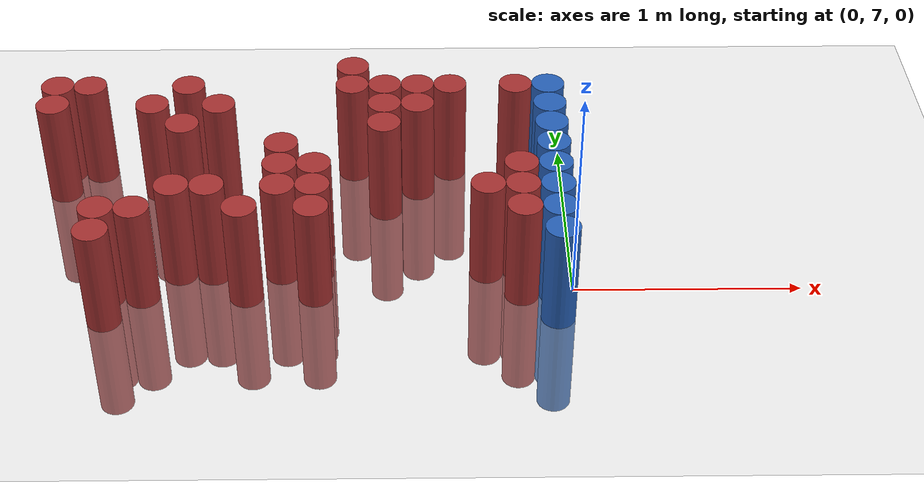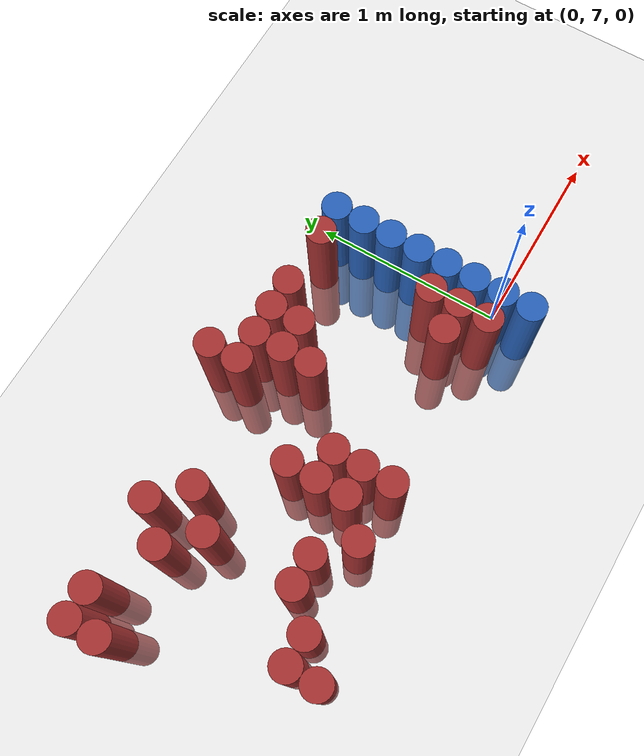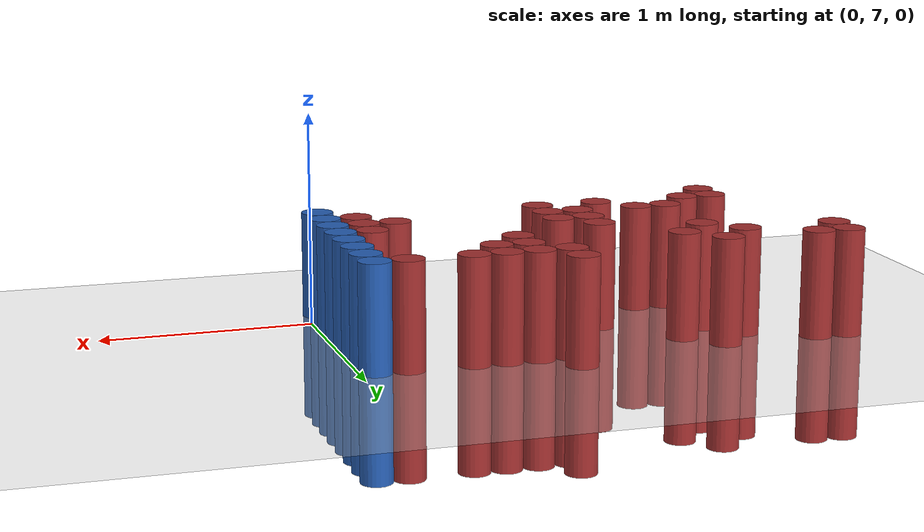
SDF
<sdf version="1.6">
 <world name="default">
  <model name="ground_plane">
   <static>1</static>
   <link name="link">
    <collision name="collision">
     <geometry><plane><normal>0 0 1</normal><size>100 100</size></plane></geometry>
     <surface><friction><ode><mu>100</mu><mu2>50</mu2></ode></friction></surface>
    </collision>
    <visual name="visual">
     <cast_shadows>0</cast_shadows>
     <geometry><plane><normal>0 0 1</normal><size>100 100</size></plane></geometry>
     <material>
      <script><uri>file://media/materials/scripts/gazebo.material</uri><name>Gazebo/Grey</name></script>
     </material>
    </visual>
   </link>
  </model>
  <model name="unit_cylinder_223">
   <static>1</static>
   <pose>-2.325000 7.725000 0.000000 0.000000 0.000000 0.000000</pose>
   <link name="link">
    <inertial>
     <mass>1</mass>
     <inertia><ixx>0.145833</ixx><ixy>0</ixy><ixz>0</ixz><iyy>0.145833</iyy><iyz>0</iyz><izz>0.125</izz></inertia>
    </inertial>
    <collision name="collision">
     <geometry><cylinder><radius>0.075000</radius><length>1</length></cylinder></geometry>
    </collision>
    <visual name="visual">
     <geometry><cylinder><radius>0.075000</radius><length>1</length></cylinder></geometry>
     <material>
      <ambient>0.648000 0.192000 0.192000 1</ambient>
      <diffuse>0.648000 0.192000 0.192000 1</diffuse>
     </material>
     <material>
      <script><name>Gazebo/Grey</name><uri>file://media/materials/scripts/gazebo.material</uri></script>
     </material>
    </visual>
    <sensor name="sensor_contact" type="contact"><contact><collision>collision</collision></contact></sensor>
   </link>
   <plugin filename="gz-sim-touchplugin-system" name="gz::sim::systems::TouchPlugin">
    <target>robot</target>
    <namespace>robot</namespace>
    <time>0.001</time>
    <enabled>true</enabled>
   </plugin>
  </model>
  <model name="unit_cylinder_224">
   <static>1</static>
   <pose>-2.325000 7.875000 0.000000 0.000000 0.000000 0.000000</pose>
   <link name="link">
    <inertial>
     <mass>1</mass>
     <inertia><ixx>0.145833</ixx><ixy>0</ixy><ixz>0</ixz><iyy>0.145833</iyy><iyz>0</iyz><izz>0.125</izz></inertia>
    </inertial>
    <collision name="collision">
     <geometry><cylinder><radius>0.075000</radius><length>1</length></cylinder></geometry>
    </collision>
    <visual name="visual">
     <geometry><cylinder><radius>0.075000</radius><length>1</length></cylinder></geometry>
     <material>
      <ambient>0.648000 0.192000 0.192000 1</ambient>
      <diffuse>0.648000 0.192000 0.192000 1</diffuse>
     </material>
     <material>
      <script><name>Gazebo/Grey</name><uri>file://media/materials/scripts/gazebo.material</uri></script>
     </material>
    </visual>
    <sensor name="sensor_contact" type="contact"><contact><collision>collision</collision></contact></sensor>
   </link>
   <plugin filename="gz-sim-touchplugin-system" name="gz::sim::systems::TouchPlugin">
    <target>robot</target>
    <namespace>robot</namespace>
    <time>0.001</time>
    <enabled>true</enabled>
   </plugin>
  </model>
  <model name="unit_cylinder_228">
   <static>1</static>
   <pose>-2.175000 7.875000 0.000000 0.000000 0.000000 0.000000</pose>
   <link name="link">
    <inertial>
     <mass>1</mass>
     <inertia><ixx>0.145833</ixx><ixy>0</ixy><ixz>0</ixz><iyy>0.145833</iyy><iyz>0</iyz><izz>0.125</izz></inertia>
    </inertial>
    <collision name="collision">
     <geometry><cylinder><radius>0.075000</radius><length>1</length></cylinder></geometry>
    </collision>
    <visual name="visual">
     <geometry><cylinder><radius>0.075000</radius><length>1</length></cylinder></geometry>
     <material>
      <ambient>0.648000 0.192000 0.192000 1</ambient>
      <diffuse>0.648000 0.192000 0.192000 1</diffuse>
     </material>
     <material>
      <script><name>Gazebo/Grey</name><uri>file://media/materials/scripts/gazebo.material</uri></script>
     </material>
    </visual>
    <sensor name="sensor_contact" type="contact"><contact><collision>collision</collision></contact></sensor>
   </link>
   <plugin filename="gz-sim-touchplugin-system" name="gz::sim::systems::TouchPlugin">
    <target>robot</target>
    <namespace>robot</namespace>
    <time>0.001</time>
    <enabled>true</enabled>
   </plugin>
  </model>
  <model name="unit_cylinder_229">
   <static>1</static>
   <pose>-2.025000 6.825000 0.000000 0.000000 0.000000 0.000000</pose>
   <link name="link">
    <inertial>
     <mass>1</mass>
     <inertia><ixx>0.145833</ixx><ixy>0</ixy><ixz>0</ixz><iyy>0.145833</iyy><iyz>0</iyz><izz>0.125</izz></inertia>
    </inertial>
    <collision name="collision">
     <geometry><cylinder><radius>0.075000</radius><length>1</length></cylinder></geometry>
    </collision>
    <visual name="visual">
     <geometry><cylinder><radius>0.075000</radius><length>1</length></cylinder></geometry>
     <material>
      <ambient>0.648000 0.192000 0.192000 1</ambient>
      <diffuse>0.648000 0.192000 0.192000 1</diffuse>
     </material>
     <material>
      <script><name>Gazebo/Grey</name><uri>file://media/materials/scripts/gazebo.material</uri></script>
     </material>
    </visual>
    <sensor name="sensor_contact" type="contact"><contact><collision>collision</collision></contact></sensor>
   </link>
   <plugin filename="gz-sim-touchplugin-system" name="gz::sim::systems::TouchPlugin">
    <target>robot</target>
    <namespace>robot</namespace>
    <time>0.001</time>
    <enabled>true</enabled>
   </plugin>
  </model>
  <model name="unit_cylinder_230">
   <static>1</static>
   <pose>-2.025000 6.975000 0.000000 0.000000 0.000000 0.000000</pose>
   <link name="link">
    <inertial>
     <mass>1</mass>
     <inertia><ixx>0.145833</ixx><ixy>0</ixy><ixz>0</ixz><iyy>0.145833</iyy><iyz>0</iyz><izz>0.125</izz></inertia>
    </inertial>
    <collision name="collision">
     <geometry><cylinder><radius>0.075000</radius><length>1</length></cylinder></geometry>
    </collision>
    <visual name="visual">
     <geometry><cylinder><radius>0.075000</radius><length>1</length></cylinder></geometry>
     <material>
      <ambient>0.648000 0.192000 0.192000 1</ambient>
      <diffuse>0.648000 0.192000 0.192000 1</diffuse>
     </material>
     <material>
      <script><name>Gazebo/Grey</name><uri>file://media/materials/scripts/gazebo.material</uri></script>
     </material>
    </visual>
    <sensor name="sensor_contact" type="contact"><contact><collision>collision</collision></contact></sensor>
   </link>
   <plugin filename="gz-sim-touchplugin-system" name="gz::sim::systems::TouchPlugin">
    <target>robot</target>
    <namespace>robot</namespace>
    <time>0.001</time>
    <enabled>true</enabled>
   </plugin>
  </model>
  <model name="unit_cylinder_232">
   <static>1</static>
   <pose>-1.875000 6.975000 0.000000 0.000000 0.000000 0.000000</pose>
   <link name="link">
    <inertial>
     <mass>1</mass>
     <inertia><ixx>0.145833</ixx><ixy>0</ixy><ixz>0</ixz><iyy>0.145833</iyy><iyz>0</iyz><izz>0.125</izz></inertia>
    </inertial>
    <collision name="collision">
     <geometry><cylinder><radius>0.075000</radius><length>1</length></cylinder></geometry>
    </collision>
    <visual name="visual">
     <geometry><cylinder><radius>0.075000</radius><length>1</length></cylinder></geometry>
     <material>
      <ambient>0.648000 0.192000 0.192000 1</ambient>
      <diffuse>0.648000 0.192000 0.192000 1</diffuse>
     </material>
     <material>
      <script><name>Gazebo/Grey</name><uri>file://media/materials/scripts/gazebo.material</uri></script>
     </material>
    </visual>
    <sensor name="sensor_contact" type="contact"><contact><collision>collision</collision></contact></sensor>
   </link>
   <plugin filename="gz-sim-touchplugin-system" name="gz::sim::systems::TouchPlugin">
    <target>robot</target>
    <namespace>robot</namespace>
    <time>0.001</time>
    <enabled>true</enabled>
   </plugin>
  </model>
  <model name="unit_cylinder_233">
   <static>1</static>
   <pose>-1.875000 7.725000 0.000000 0.000000 0.000000 0.000000</pose>
   <link name="link">
    <inertial>
     <mass>1</mass>
     <inertia><ixx>0.145833</ixx><ixy>0</ixy><ixz>0</ixz><iyy>0.145833</iyy><iyz>0</iyz><izz>0.125</izz></inertia>
    </inertial>
    <collision name="collision">
     <geometry><cylinder><radius>0.075000</radius><length>1</length></cylinder></geometry>
    </collision>
    <visual name="visual">
     <geometry><cylinder><radius>0.075000</radius><length>1</length></cylinder></geometry>
     <material>
      <ambient>0.648000 0.192000 0.192000 1</ambient>
      <diffuse>0.648000 0.192000 0.192000 1</diffuse>
     </material>
     <material>
      <script><name>Gazebo/Grey</name><uri>file://media/materials/scripts/gazebo.material</uri></script>
     </material>
    </visual>
    <sensor name="sensor_contact" type="contact"><contact><collision>collision</collision></contact></sensor>
   </link>
   <plugin filename="gz-sim-touchplugin-system" name="gz::sim::systems::TouchPlugin">
    <target>robot</target>
    <namespace>robot</namespace>
    <time>0.001</time>
    <enabled>true</enabled>
   </plugin>
  </model>
  <model name="unit_cylinder_237">
   <static>1</static>
   <pose>-1.725000 7.125000 0.000000 0.000000 0.000000 0.000000</pose>
   <link name="link">
    <inertial>
     <mass>1</mass>
     <inertia><ixx>0.145833</ixx><ixy>0</ixy><ixz>0</ixz><iyy>0.145833</iyy><iyz>0</iyz><izz>0.125</izz></inertia>
    </inertial>
    <collision name="collision">
     <geometry><cylinder><radius>0.075000</radius><length>1</length></cylinder></geometry>
    </collision>
    <visual name="visual">
     <geometry><cylinder><radius>0.075000</radius><length>1</length></cylinder></geometry>
     <material>
      <ambient>0.648000 0.192000 0.192000 1</ambient>
      <diffuse>0.648000 0.192000 0.192000 1</diffuse>
     </material>
     <material>
      <script><name>Gazebo/Grey</name><uri>file://media/materials/scripts/gazebo.material</uri></script>
     </material>
    </visual>
    <sensor name="sensor_contact" type="contact"><contact><collision>collision</collision></contact></sensor>
   </link>
   <plugin filename="gz-sim-touchplugin-system" name="gz::sim::systems::TouchPlugin">
    <target>robot</target>
    <namespace>robot</namespace>
    <time>0.001</time>
    <enabled>true</enabled>
   </plugin>
  </model>
  <model name="unit_cylinder_238">
   <static>1</static>
   <pose>-1.725000 7.575000 0.000000 0.000000 0.000000 0.000000</pose>
   <link name="link">
    <inertial>
     <mass>1</mass>
     <inertia><ixx>0.145833</ixx><ixy>0</ixy><ixz>0</ixz><iyy>0.145833</iyy><iyz>0</iyz><izz>0.125</izz></inertia>
    </inertial>
    <collision name="collision">
     <geometry><cylinder><radius>0.075000</radius><length>1</length></cylinder></geometry>
    </collision>
    <visual name="visual">
     <geometry><cylinder><radius>0.075000</radius><length>1</length></cylinder></geometry>
     <material>
      <ambient>0.648000 0.192000 0.192000 1</ambient>
      <diffuse>0.648000 0.192000 0.192000 1</diffuse>
     </material>
     <material>
      <script><name>Gazebo/Grey</name><uri>file://media/materials/scripts/gazebo.material</uri></script>
     </material>
    </visual>
    <sensor name="sensor_contact" type="contact"><contact><collision>collision</collision></contact></sensor>
   </link>
   <plugin filename="gz-sim-touchplugin-system" name="gz::sim::systems::TouchPlugin">
    <target>robot</target>
    <namespace>robot</namespace>
    <time>0.001</time>
    <enabled>true</enabled>
   </plugin>
  </model>
  <model name="unit_cylinder_239">
   <static>1</static>
   <pose>-1.725000 7.875000 0.000000 0.000000 0.000000 0.000000</pose>
   <link name="link">
    <inertial>
     <mass>1</mass>
     <inertia><ixx>0.145833</ixx><ixy>0</ixy><ixz>0</ixz><iyy>0.145833</iyy><iyz>0</iyz><izz>0.125</izz></inertia>
    </inertial>
    <collision name="collision">
     <geometry><cylinder><radius>0.075000</radius><length>1</length></cylinder></geometry>
    </collision>
    <visual name="visual">
     <geometry><cylinder><radius>0.075000</radius><length>1</length></cylinder></geometry>
     <material>
      <ambient>0.648000 0.192000 0.192000 1</ambient>
      <diffuse>0.648000 0.192000 0.192000 1</diffuse>
     </material>
     <material>
      <script><name>Gazebo/Grey</name><uri>file://media/materials/scripts/gazebo.material</uri></script>
     </material>
    </visual>
    <sensor name="sensor_contact" type="contact"><contact><collision>collision</collision></contact></sensor>
   </link>
   <plugin filename="gz-sim-touchplugin-system" name="gz::sim::systems::TouchPlugin">
    <target>robot</target>
    <namespace>robot</namespace>
    <time>0.001</time>
    <enabled>true</enabled>
   </plugin>
  </model>
  <model name="unit_cylinder_241">
   <static>1</static>
   <pose>-1.575000 7.125000 0.000000 0.000000 0.000000 0.000000</pose>
   <link name="link">
    <inertial>
     <mass>1</mass>
     <inertia><ixx>0.145833</ixx><ixy>0</ixy><ixz>0</ixz><iyy>0.145833</iyy><iyz>0</iyz><izz>0.125</izz></inertia>
    </inertial>
    <collision name="collision">
     <geometry><cylinder><radius>0.075000</radius><length>1</length></cylinder></geometry>
    </collision>
    <visual name="visual">
     <geometry><cylinder><radius>0.075000</radius><length>1</length></cylinder></geometry>
     <material>
      <ambient>0.648000 0.192000 0.192000 1</ambient>
      <diffuse>0.648000 0.192000 0.192000 1</diffuse>
     </material>
     <material>
      <script><name>Gazebo/Grey</name><uri>file://media/materials/scripts/gazebo.material</uri></script>
     </material>
    </visual>
    <sensor name="sensor_contact" type="contact"><contact><collision>collision</collision></contact></sensor>
   </link>
   <plugin filename="gz-sim-touchplugin-system" name="gz::sim::systems::TouchPlugin">
    <target>robot</target>
    <namespace>robot</namespace>
    <time>0.001</time>
    <enabled>true</enabled>
   </plugin>
  </model>
  <model name="unit_cylinder_242">
   <static>1</static>
   <pose>-1.575000 7.725000 0.000000 0.000000 0.000000 0.000000</pose>
   <link name="link">
    <inertial>
     <mass>1</mass>
     <inertia><ixx>0.145833</ixx><ixy>0</ixy><ixz>0</ixz><iyy>0.145833</iyy><iyz>0</iyz><izz>0.125</izz></inertia>
    </inertial>
    <collision name="collision">
     <geometry><cylinder><radius>0.075000</radius><length>1</length></cylinder></geometry>
    </collision>
    <visual name="visual">
     <geometry><cylinder><radius>0.075000</radius><length>1</length></cylinder></geometry>
     <material>
      <ambient>0.648000 0.192000 0.192000 1</ambient>
      <diffuse>0.648000 0.192000 0.192000 1</diffuse>
     </material>
     <material>
      <script><name>Gazebo/Grey</name><uri>file://media/materials/scripts/gazebo.material</uri></script>
     </material>
    </visual>
    <sensor name="sensor_contact" type="contact"><contact><collision>collision</collision></contact></sensor>
   </link>
   <plugin filename="gz-sim-touchplugin-system" name="gz::sim::systems::TouchPlugin">
    <target>robot</target>
    <namespace>robot</namespace>
    <time>0.001</time>
    <enabled>true</enabled>
   </plugin>
  </model>
  <model name="unit_cylinder_243">
   <static>1</static>
   <pose>-1.425000 6.975000 0.000000 0.000000 0.000000 0.000000</pose>
   <link name="link">
    <inertial>
     <mass>1</mass>
     <inertia><ixx>0.145833</ixx><ixy>0</ixy><ixz>0</ixz><iyy>0.145833</iyy><iyz>0</iyz><izz>0.125</izz></inertia>
    </inertial>
    <collision name="collision">
     <geometry><cylinder><radius>0.075000</radius><length>1</length></cylinder></geometry>
    </collision>
    <visual name="visual">
     <geometry><cylinder><radius>0.075000</radius><length>1</length></cylinder></geometry>
     <material>
      <ambient>0.648000 0.192000 0.192000 1</ambient>
      <diffuse>0.648000 0.192000 0.192000 1</diffuse>
     </material>
     <material>
      <script><name>Gazebo/Grey</name><uri>file://media/materials/scripts/gazebo.material</uri></script>
     </material>
    </visual>
    <sensor name="sensor_contact" type="contact"><contact><collision>collision</collision></contact></sensor>
   </link>
   <plugin filename="gz-sim-touchplugin-system" name="gz::sim::systems::TouchPlugin">
    <target>robot</target>
    <namespace>robot</namespace>
    <time>0.001</time>
    <enabled>true</enabled>
   </plugin>
  </model>
  <model name="unit_cylinder_246">
   <static>1</static>
   <pose>-1.275000 7.125000 0.000000 0.000000 0.000000 0.000000</pose>
   <link name="link">
    <inertial>
     <mass>1</mass>
     <inertia><ixx>0.145833</ixx><ixy>0</ixy><ixz>0</ixz><iyy>0.145833</iyy><iyz>0</iyz><izz>0.125</izz></inertia>
    </inertial>
    <collision name="collision">
     <geometry><cylinder><radius>0.075000</radius><length>1</length></cylinder></geometry>
    </collision>
    <visual name="visual">
     <geometry><cylinder><radius>0.075000</radius><length>1</length></cylinder></geometry>
     <material>
      <ambient>0.648000 0.192000 0.192000 1</ambient>
      <diffuse>0.648000 0.192000 0.192000 1</diffuse>
     </material>
     <material>
      <script><name>Gazebo/Grey</name><uri>file://media/materials/scripts/gazebo.material</uri></script>
     </material>
    </visual>
    <sensor name="sensor_contact" type="contact"><contact><collision>collision</collision></contact></sensor>
   </link>
   <plugin filename="gz-sim-touchplugin-system" name="gz::sim::systems::TouchPlugin">
    <target>robot</target>
    <namespace>robot</namespace>
    <time>0.001</time>
    <enabled>true</enabled>
   </plugin>
  </model>
  <model name="unit_cylinder_247">
   <static>1</static>
   <pose>-1.275000 7.275000 0.000000 0.000000 0.000000 0.000000</pose>
   <link name="link">
    <inertial>
     <mass>1</mass>
     <inertia><ixx>0.145833</ixx><ixy>0</ixy><ixz>0</ixz><iyy>0.145833</iyy><iyz>0</iyz><izz>0.125</izz></inertia>
    </inertial>
    <collision name="collision">
     <geometry><cylinder><radius>0.075000</radius><length>1</length></cylinder></geometry>
    </collision>
    <visual name="visual">
     <geometry><cylinder><radius>0.075000</radius><length>1</length></cylinder></geometry>
     <material>
      <ambient>0.648000 0.192000 0.192000 1</ambient>
      <diffuse>0.648000 0.192000 0.192000 1</diffuse>
     </material>
     <material>
      <script><name>Gazebo/Grey</name><uri>file://media/materials/scripts/gazebo.material</uri></script>
     </material>
    </visual>
    <sensor name="sensor_contact" type="contact"><contact><collision>collision</collision></contact></sensor>
   </link>
   <plugin filename="gz-sim-touchplugin-system" name="gz::sim::systems::TouchPlugin">
    <target>robot</target>
    <namespace>robot</namespace>
    <time>0.001</time>
    <enabled>true</enabled>
   </plugin>
  </model>
  <model name="unit_cylinder_248">
   <static>1</static>
   <pose>-1.275000 7.425000 0.000000 0.000000 0.000000 0.000000</pose>
   <link name="link">
    <inertial>
     <mass>1</mass>
     <inertia><ixx>0.145833</ixx><ixy>0</ixy><ixz>0</ixz><iyy>0.145833</iyy><iyz>0</iyz><izz>0.125</izz></inertia>
    </inertial>
    <collision name="collision">
     <geometry><cylinder><radius>0.075000</radius><length>1</length></cylinder></geometry>
    </collision>
    <visual name="visual">
     <geometry><cylinder><radius>0.075000</radius><length>1</length></cylinder></geometry>
     <material>
      <ambient>0.648000 0.192000 0.192000 1</ambient>
      <diffuse>0.648000 0.192000 0.192000 1</diffuse>
     </material>
     <material>
      <script><name>Gazebo/Grey</name><uri>file://media/materials/scripts/gazebo.material</uri></script>
     </material>
    </visual>
    <sensor name="sensor_contact" type="contact"><contact><collision>collision</collision></contact></sensor>
   </link>
   <plugin filename="gz-sim-touchplugin-system" name="gz::sim::systems::TouchPlugin">
    <target>robot</target>
    <namespace>robot</namespace>
    <time>0.001</time>
    <enabled>true</enabled>
   </plugin>
  </model>
  <model name="unit_cylinder_250">
   <static>1</static>
   <pose>-1.125000 6.975000 0.000000 0.000000 0.000000 0.000000</pose>
   <link name="link">
    <inertial>
     <mass>1</mass>
     <inertia><ixx>0.145833</ixx><ixy>0</ixy><ixz>0</ixz><iyy>0.145833</iyy><iyz>0</iyz><izz>0.125</izz></inertia>
    </inertial>
    <collision name="collision">
     <geometry><cylinder><radius>0.075000</radius><length>1</length></cylinder></geometry>
    </collision>
    <visual name="visual">
     <geometry><cylinder><radius>0.075000</radius><length>1</length></cylinder></geometry>
     <material>
      <ambient>0.648000 0.192000 0.192000 1</ambient>
      <diffuse>0.648000 0.192000 0.192000 1</diffuse>
     </material>
     <material>
      <script><name>Gazebo/Grey</name><uri>file://media/materials/scripts/gazebo.material</uri></script>
     </material>
    </visual>
    <sensor name="sensor_contact" type="contact"><contact><collision>collision</collision></contact></sensor>
   </link>
   <plugin filename="gz-sim-touchplugin-system" name="gz::sim::systems::TouchPlugin">
    <target>robot</target>
    <namespace>robot</namespace>
    <time>0.001</time>
    <enabled>true</enabled>
   </plugin>
  </model>
  <model name="unit_cylinder_251">
   <static>1</static>
   <pose>-1.125000 7.125000 0.000000 0.000000 0.000000 0.000000</pose>
   <link name="link">
    <inertial>
     <mass>1</mass>
     <inertia><ixx>0.145833</ixx><ixy>0</ixy><ixz>0</ixz><iyy>0.145833</iyy><iyz>0</iyz><izz>0.125</izz></inertia>
    </inertial>
    <collision name="collision">
     <geometry><cylinder><radius>0.075000</radius><length>1</length></cylinder></geometry>
    </collision>
    <visual name="visual">
     <geometry><cylinder><radius>0.075000</radius><length>1</length></cylinder></geometry>
     <material>
      <ambient>0.648000 0.192000 0.192000 1</ambient>
      <diffuse>0.648000 0.192000 0.192000 1</diffuse>
     </material>
     <material>
      <script><name>Gazebo/Grey</name><uri>file://media/materials/scripts/gazebo.material</uri></script>
     </material>
    </visual>
    <sensor name="sensor_contact" type="contact"><contact><collision>collision</collision></contact></sensor>
   </link>
   <plugin filename="gz-sim-touchplugin-system" name="gz::sim::systems::TouchPlugin">
    <target>robot</target>
    <namespace>robot</namespace>
    <time>0.001</time>
    <enabled>true</enabled>
   </plugin>
  </model>
  <model name="unit_cylinder_252">
   <static>1</static>
   <pose>-1.125000 7.275000 0.000000 0.000000 0.000000 0.000000</pose>
   <link name="link">
    <inertial>
     <mass>1</mass>
     <inertia><ixx>0.145833</ixx><ixy>0</ixy><ixz>0</ixz><iyy>0.145833</iyy><iyz>0</iyz><izz>0.125</izz></inertia>
    </inertial>
    <collision name="collision">
     <geometry><cylinder><radius>0.075000</radius><length>1</length></cylinder></geometry>
    </collision>
    <visual name="visual">
     <geometry><cylinder><radius>0.075000</radius><length>1</length></cylinder></geometry>
     <material>
      <ambient>0.648000 0.192000 0.192000 1</ambient>
      <diffuse>0.648000 0.192000 0.192000 1</diffuse>
     </material>
     <material>
      <script><name>Gazebo/Grey</name><uri>file://media/materials/scripts/gazebo.material</uri></script>
     </material>
    </visual>
    <sensor name="sensor_contact" type="contact"><contact><collision>collision</collision></contact></sensor>
   </link>
   <plugin filename="gz-sim-touchplugin-system" name="gz::sim::systems::TouchPlugin">
    <target>robot</target>
    <namespace>robot</namespace>
    <time>0.001</time>
    <enabled>true</enabled>
   </plugin>
  </model>
  <model name="unit_cylinder_256">
   <static>1</static>
   <pose>-0.975000 7.875000 0.000000 0.000000 0.000000 0.000000</pose>
   <link name="link">
    <inertial>
     <mass>1</mass>
     <inertia><ixx>0.145833</ixx><ixy>0</ixy><ixz>0</ixz><iyy>0.145833</iyy><iyz>0</iyz><izz>0.125</izz></inertia>
    </inertial>
    <collision name="collision">
     <geometry><cylinder><radius>0.075000</radius><length>1</length></cylinder></geometry>
    </collision>
    <visual name="visual">
     <geometry><cylinder><radius>0.075000</radius><length>1</length></cylinder></geometry>
     <material>
      <ambient>0.648000 0.192000 0.192000 1</ambient>
      <diffuse>0.648000 0.192000 0.192000 1</diffuse>
     </material>
     <material>
      <script><name>Gazebo/Grey</name><uri>file://media/materials/scripts/gazebo.material</uri></script>
     </material>
    </visual>
    <sensor name="sensor_contact" type="contact"><contact><collision>collision</collision></contact></sensor>
   </link>
   <plugin filename="gz-sim-touchplugin-system" name="gz::sim::systems::TouchPlugin">
    <target>robot</target>
    <namespace>robot</namespace>
    <time>0.001</time>
    <enabled>true</enabled>
   </plugin>
  </model>
  <model name="unit_cylinder_257">
   <static>1</static>
   <pose>-0.975000 8.025000 0.000000 0.000000 0.000000 0.000000</pose>
   <link name="link">
    <inertial>
     <mass>1</mass>
     <inertia><ixx>0.145833</ixx><ixy>0</ixy><ixz>0</ixz><iyy>0.145833</iyy><iyz>0</iyz><izz>0.125</izz></inertia>
    </inertial>
    <collision name="collision">
     <geometry><cylinder><radius>0.075000</radius><length>1</length></cylinder></geometry>
    </collision>
    <visual name="visual">
     <geometry><cylinder><radius>0.075000</radius><length>1</length></cylinder></geometry>
     <material>
      <ambient>0.648000 0.192000 0.192000 1</ambient>
      <diffuse>0.648000 0.192000 0.192000 1</diffuse>
     </material>
     <material>
      <script><name>Gazebo/Grey</name><uri>file://media/materials/scripts/gazebo.material</uri></script>
     </material>
    </visual>
    <sensor name="sensor_contact" type="contact"><contact><collision>collision</collision></contact></sensor>
   </link>
   <plugin filename="gz-sim-touchplugin-system" name="gz::sim::systems::TouchPlugin">
    <target>robot</target>
    <namespace>robot</namespace>
    <time>0.001</time>
    <enabled>true</enabled>
   </plugin>
  </model>
  <model name="unit_cylinder_260">
   <static>1</static>
   <pose>-0.825000 7.575000 0.000000 0.000000 0.000000 0.000000</pose>
   <link name="link">
    <inertial>
     <mass>1</mass>
     <inertia><ixx>0.145833</ixx><ixy>0</ixy><ixz>0</ixz><iyy>0.145833</iyy><iyz>0</iyz><izz>0.125</izz></inertia>
    </inertial>
    <collision name="collision">
     <geometry><cylinder><radius>0.075000</radius><length>1</length></cylinder></geometry>
    </collision>
    <visual name="visual">
     <geometry><cylinder><radius>0.075000</radius><length>1</length></cylinder></geometry>
     <material>
      <ambient>0.648000 0.192000 0.192000 1</ambient>
      <diffuse>0.648000 0.192000 0.192000 1</diffuse>
     </material>
     <material>
      <script><name>Gazebo/Grey</name><uri>file://media/materials/scripts/gazebo.material</uri></script>
     </material>
    </visual>
    <sensor name="sensor_contact" type="contact"><contact><collision>collision</collision></contact></sensor>
   </link>
   <plugin filename="gz-sim-touchplugin-system" name="gz::sim::systems::TouchPlugin">
    <target>robot</target>
    <namespace>robot</namespace>
    <time>0.001</time>
    <enabled>true</enabled>
   </plugin>
  </model>
  <model name="unit_cylinder_261">
   <static>1</static>
   <pose>-0.825000 7.725000 0.000000 0.000000 0.000000 0.000000</pose>
   <link name="link">
    <inertial>
     <mass>1</mass>
     <inertia><ixx>0.145833</ixx><ixy>0</ixy><ixz>0</ixz><iyy>0.145833</iyy><iyz>0</iyz><izz>0.125</izz></inertia>
    </inertial>
    <collision name="collision">
     <geometry><cylinder><radius>0.075000</radius><length>1</length></cylinder></geometry>
    </collision>
    <visual name="visual">
     <geometry><cylinder><radius>0.075000</radius><length>1</length></cylinder></geometry>
     <material>
      <ambient>0.648000 0.192000 0.192000 1</ambient>
      <diffuse>0.648000 0.192000 0.192000 1</diffuse>
     </material>
     <material>
      <script><name>Gazebo/Grey</name><uri>file://media/materials/scripts/gazebo.material</uri></script>
     </material>
    </visual>
    <sensor name="sensor_contact" type="contact"><contact><collision>collision</collision></contact></sensor>
   </link>
   <plugin filename="gz-sim-touchplugin-system" name="gz::sim::systems::TouchPlugin">
    <target>robot</target>
    <namespace>robot</namespace>
    <time>0.001</time>
    <enabled>true</enabled>
   </plugin>
  </model>
  <model name="unit_cylinder_262">
   <static>1</static>
   <pose>-0.825000 7.875000 0.000000 0.000000 0.000000 0.000000</pose>
   <link name="link">
    <inertial>
     <mass>1</mass>
     <inertia><ixx>0.145833</ixx><ixy>0</ixy><ixz>0</ixz><iyy>0.145833</iyy><iyz>0</iyz><izz>0.125</izz></inertia>
    </inertial>
    <collision name="collision">
     <geometry><cylinder><radius>0.075000</radius><length>1</length></cylinder></geometry>
    </collision>
    <visual name="visual">
     <geometry><cylinder><radius>0.075000</radius><length>1</length></cylinder></geometry>
     <material>
      <ambient>0.648000 0.192000 0.192000 1</ambient>
      <diffuse>0.648000 0.192000 0.192000 1</diffuse>
     </material>
     <material>
      <script><name>Gazebo/Grey</name><uri>file://media/materials/scripts/gazebo.material</uri></script>
     </material>
    </visual>
    <sensor name="sensor_contact" type="contact"><contact><collision>collision</collision></contact></sensor>
   </link>
   <plugin filename="gz-sim-touchplugin-system" name="gz::sim::systems::TouchPlugin">
    <target>robot</target>
    <namespace>robot</namespace>
    <time>0.001</time>
    <enabled>true</enabled>
   </plugin>
  </model>
  <model name="unit_cylinder_266">
   <static>1</static>
   <pose>-0.675000 7.725000 0.000000 0.000000 0.000000 0.000000</pose>
   <link name="link">
    <inertial>
     <mass>1</mass>
     <inertia><ixx>0.145833</ixx><ixy>0</ixy><ixz>0</ixz><iyy>0.145833</iyy><iyz>0</iyz><izz>0.125</izz></inertia>
    </inertial>
    <collision name="collision">
     <geometry><cylinder><radius>0.075000</radius><length>1</length></cylinder></geometry>
    </collision>
    <visual name="visual">
     <geometry><cylinder><radius>0.075000</radius><length>1</length></cylinder></geometry>
     <material>
      <ambient>0.648000 0.192000 0.192000 1</ambient>
      <diffuse>0.648000 0.192000 0.192000 1</diffuse>
     </material>
     <material>
      <script><name>Gazebo/Grey</name><uri>file://media/materials/scripts/gazebo.material</uri></script>
     </material>
    </visual>
    <sensor name="sensor_contact" type="contact"><contact><collision>collision</collision></contact></sensor>
   </link>
   <plugin filename="gz-sim-touchplugin-system" name="gz::sim::systems::TouchPlugin">
    <target>robot</target>
    <namespace>robot</namespace>
    <time>0.001</time>
    <enabled>true</enabled>
   </plugin>
  </model>
  <model name="unit_cylinder_267">
   <static>1</static>
   <pose>-0.675000 7.875000 0.000000 0.000000 0.000000 0.000000</pose>
   <link name="link">
    <inertial>
     <mass>1</mass>
     <inertia><ixx>0.145833</ixx><ixy>0</ixy><ixz>0</ixz><iyy>0.145833</iyy><iyz>0</iyz><izz>0.125</izz></inertia>
    </inertial>
    <collision name="collision">
     <geometry><cylinder><radius>0.075000</radius><length>1</length></cylinder></geometry>
    </collision>
    <visual name="visual">
     <geometry><cylinder><radius>0.075000</radius><length>1</length></cylinder></geometry>
     <material>
      <ambient>0.648000 0.192000 0.192000 1</ambient>
      <diffuse>0.648000 0.192000 0.192000 1</diffuse>
     </material>
     <material>
      <script><name>Gazebo/Grey</name><uri>file://media/materials/scripts/gazebo.material</uri></script>
     </material>
    </visual>
    <sensor name="sensor_contact" type="contact"><contact><collision>collision</collision></contact></sensor>
   </link>
   <plugin filename="gz-sim-touchplugin-system" name="gz::sim::systems::TouchPlugin">
    <target>robot</target>
    <namespace>robot</namespace>
    <time>0.001</time>
    <enabled>true</enabled>
   </plugin>
  </model>
  <model name="unit_cylinder_272">
   <static>1</static>
   <pose>-0.525000 7.875000 0.000000 0.000000 0.000000 0.000000</pose>
   <link name="link">
    <inertial>
     <mass>1</mass>
     <inertia><ixx>0.145833</ixx><ixy>0</ixy><ixz>0</ixz><iyy>0.145833</iyy><iyz>0</iyz><izz>0.125</izz></inertia>
    </inertial>
    <collision name="collision">
     <geometry><cylinder><radius>0.075000</radius><length>1</length></cylinder></geometry>
    </collision>
    <visual name="visual">
     <geometry><cylinder><radius>0.075000</radius><length>1</length></cylinder></geometry>
     <material>
      <ambient>0.648000 0.192000 0.192000 1</ambient>
      <diffuse>0.648000 0.192000 0.192000 1</diffuse>
     </material>
     <material>
      <script><name>Gazebo/Grey</name><uri>file://media/materials/scripts/gazebo.material</uri></script>
     </material>
    </visual>
    <sensor name="sensor_contact" type="contact"><contact><collision>collision</collision></contact></sensor>
   </link>
   <plugin filename="gz-sim-touchplugin-system" name="gz::sim::systems::TouchPlugin">
    <target>robot</target>
    <namespace>robot</namespace>
    <time>0.001</time>
    <enabled>true</enabled>
   </plugin>
  </model>
  <model name="unit_cylinder_275">
   <static>1</static>
   <pose>-0.375000 7.125000 0.000000 0.000000 0.000000 0.000000</pose>
   <link name="link">
    <inertial>
     <mass>1</mass>
     <inertia><ixx>0.145833</ixx><ixy>0</ixy><ixz>0</ixz><iyy>0.145833</iyy><iyz>0</iyz><izz>0.125</izz></inertia>
    </inertial>
    <collision name="collision">
     <geometry><cylinder><radius>0.075000</radius><length>1</length></cylinder></geometry>
    </collision>
    <visual name="visual">
     <geometry><cylinder><radius>0.075000</radius><length>1</length></cylinder></geometry>
     <material>
      <ambient>0.648000 0.192000 0.192000 1</ambient>
      <diffuse>0.648000 0.192000 0.192000 1</diffuse>
     </material>
     <material>
      <script><name>Gazebo/Grey</name><uri>file://media/materials/scripts/gazebo.material</uri></script>
     </material>
    </visual>
    <sensor name="sensor_contact" type="contact"><contact><collision>collision</collision></contact></sensor>
   </link>
   <plugin filename="gz-sim-touchplugin-system" name="gz::sim::systems::TouchPlugin">
    <target>robot</target>
    <namespace>robot</namespace>
    <time>0.001</time>
    <enabled>true</enabled>
   </plugin>
  </model>
  <model name="unit_cylinder_281">
   <static>1</static>
   <pose>-0.225000 6.975000 0.000000 0.000000 0.000000 0.000000</pose>
   <link name="link">
    <inertial>
     <mass>1</mass>
     <inertia><ixx>0.145833</ixx><ixy>0</ixy><ixz>0</ixz><iyy>0.145833</iyy><iyz>0</iyz><izz>0.125</izz></inertia>
    </inertial>
    <collision name="collision">
     <geometry><cylinder><radius>0.075000</radius><length>1</length></cylinder></geometry>
    </collision>
    <visual name="visual">
     <geometry><cylinder><radius>0.075000</radius><length>1</length></cylinder></geometry>
     <material>
      <ambient>0.648000 0.192000 0.192000 1</ambient>
      <diffuse>0.648000 0.192000 0.192000 1</diffuse>
     </material>
     <material>
      <script><name>Gazebo/Grey</name><uri>file://media/materials/scripts/gazebo.material</uri></script>
     </material>
    </visual>
    <sensor name="sensor_contact" type="contact"><contact><collision>collision</collision></contact></sensor>
   </link>
   <plugin filename="gz-sim-touchplugin-system" name="gz::sim::systems::TouchPlugin">
    <target>robot</target>
    <namespace>robot</namespace>
    <time>0.001</time>
    <enabled>true</enabled>
   </plugin>
  </model>
  <model name="unit_cylinder_282">
   <static>1</static>
   <pose>-0.225000 7.125000 0.000000 0.000000 0.000000 0.000000</pose>
   <link name="link">
    <inertial>
     <mass>1</mass>
     <inertia><ixx>0.145833</ixx><ixy>0</ixy><ixz>0</ixz><iyy>0.145833</iyy><iyz>0</iyz><izz>0.125</izz></inertia>
    </inertial>
    <collision name="collision">
     <geometry><cylinder><radius>0.075000</radius><length>1</length></cylinder></geometry>
    </collision>
    <visual name="visual">
     <geometry><cylinder><radius>0.075000</radius><length>1</length></cylinder></geometry>
     <material>
      <ambient>0.648000 0.192000 0.192000 1</ambient>
      <diffuse>0.648000 0.192000 0.192000 1</diffuse>
     </material>
     <material>
      <script><name>Gazebo/Grey</name><uri>file://media/materials/scripts/gazebo.material</uri></script>
     </material>
    </visual>
    <sensor name="sensor_contact" type="contact"><contact><collision>collision</collision></contact></sensor>
   </link>
   <plugin filename="gz-sim-touchplugin-system" name="gz::sim::systems::TouchPlugin">
    <target>robot</target>
    <namespace>robot</namespace>
    <time>0.001</time>
    <enabled>true</enabled>
   </plugin>
  </model>
  <model name="unit_cylinder_283">
   <static>1</static>
   <pose>-0.225000 7.275000 0.000000 0.000000 0.000000 0.000000</pose>
   <link name="link">
    <inertial>
     <mass>1</mass>
     <inertia><ixx>0.145833</ixx><ixy>0</ixy><ixz>0</ixz><iyy>0.145833</iyy><iyz>0</iyz><izz>0.125</izz></inertia>
    </inertial>
    <collision name="collision">
     <geometry><cylinder><radius>0.075000</radius><length>1</length></cylinder></geometry>
    </collision>
    <visual name="visual">
     <geometry><cylinder><radius>0.075000</radius><length>1</length></cylinder></geometry>
     <material>
      <ambient>0.648000 0.192000 0.192000 1</ambient>
      <diffuse>0.648000 0.192000 0.192000 1</diffuse>
     </material>
     <material>
      <script><name>Gazebo/Grey</name><uri>file://media/materials/scripts/gazebo.material</uri></script>
     </material>
    </visual>
    <sensor name="sensor_contact" type="contact"><contact><collision>collision</collision></contact></sensor>
   </link>
   <plugin filename="gz-sim-touchplugin-system" name="gz::sim::systems::TouchPlugin">
    <target>robot</target>
    <namespace>robot</namespace>
    <time>0.001</time>
    <enabled>true</enabled>
   </plugin>
  </model>
  <model name="unit_cylinder_284">
   <static>1</static>
   <pose>-0.225000 7.875000 0.000000 0.000000 0.000000 0.000000</pose>
   <link name="link">
    <inertial>
     <mass>1</mass>
     <inertia><ixx>0.145833</ixx><ixy>0</ixy><ixz>0</ixz><iyy>0.145833</iyy><iyz>0</iyz><izz>0.125</izz></inertia>
    </inertial>
    <collision name="collision">
     <geometry><cylinder><radius>0.075000</radius><length>1</length></cylinder></geometry>
    </collision>
    <visual name="visual">
     <geometry><cylinder><radius>0.075000</radius><length>1</length></cylinder></geometry>
     <material>
      <ambient>0.648000 0.192000 0.192000 1</ambient>
      <diffuse>0.648000 0.192000 0.192000 1</diffuse>
     </material>
     <material>
      <script><name>Gazebo/Grey</name><uri>file://media/materials/scripts/gazebo.material</uri></script>
     </material>
    </visual>
    <sensor name="sensor_contact" type="contact"><contact><collision>collision</collision></contact></sensor>
   </link>
   <plugin filename="gz-sim-touchplugin-system" name="gz::sim::systems::TouchPlugin">
    <target>robot</target>
    <namespace>robot</namespace>
    <time>0.001</time>
    <enabled>true</enabled>
   </plugin>
  </model>
  <model name="unit_cylinder_302">
   <static>1</static>
   <pose>-0.075000 6.825000 0.000000 0.000000 0.000000 0.000000</pose>
   <link name="link">
    <inertial>
     <mass>1</mass>
     <inertia><ixx>0.145833</ixx><ixy>0</ixy><ixz>0</ixz><iyy>0.145833</iyy><iyz>0</iyz><izz>0.125</izz></inertia>
    </inertial>
    <collision name="collision">
     <geometry><cylinder><radius>0.075000</radius><length>1</length></cylinder></geometry>
    </collision>
    <visual name="visual">
     <geometry><cylinder><radius>0.075000</radius><length>1</length></cylinder></geometry>
     <material>
      <ambient>0.152000 0.379000 0.720000 1</ambient>
      <diffuse>0.152000 0.379000 0.720000 1</diffuse>
     </material>
     <material>
      <script><name>Gazebo/Grey</name><uri>file://media/materials/scripts/gazebo.material</uri></script>
     </material>
    </visual>
    <sensor name="sensor_contact" type="contact"><contact><collision>collision</collision></contact></sensor>
   </link>
   <plugin filename="gz-sim-touchplugin-system" name="gz::sim::systems::TouchPlugin">
    <target>robot</target>
    <namespace>robot</namespace>
    <time>0.001</time>
    <enabled>true</enabled>
   </plugin>
  </model>
  <model name="unit_cylinder_303">
   <static>1</static>
   <pose>-0.075000 6.975000 0.000000 0.000000 0.000000 0.000000</pose>
   <link name="link">
    <inertial>
     <mass>1</mass>
     <inertia><ixx>0.145833</ixx><ixy>0</ixy><ixz>0</ixz><iyy>0.145833</iyy><iyz>0</iyz><izz>0.125</izz></inertia>
    </inertial>
    <collision name="collision">
     <geometry><cylinder><radius>0.075000</radius><length>1</length></cylinder></geometry>
    </collision>
    <visual name="visual">
     <geometry><cylinder><radius>0.075000</radius><length>1</length></cylinder></geometry>
     <material>
      <ambient>0.152000 0.379000 0.720000 1</ambient>
      <diffuse>0.152000 0.379000 0.720000 1</diffuse>
     </material>
     <material>
      <script><name>Gazebo/Grey</name><uri>file://media/materials/scripts/gazebo.material</uri></script>
     </material>
    </visual>
    <sensor name="sensor_contact" type="contact"><contact><collision>collision</collision></contact></sensor>
   </link>
   <plugin filename="gz-sim-touchplugin-system" name="gz::sim::systems::TouchPlugin">
    <target>robot</target>
    <namespace>robot</namespace>
    <time>0.001</time>
    <enabled>true</enabled>
   </plugin>
  </model>
  <model name="unit_cylinder_304">
   <static>1</static>
   <pose>-0.075000 7.125000 0.000000 0.000000 0.000000 0.000000</pose>
   <link name="link">
    <inertial>
     <mass>1</mass>
     <inertia><ixx>0.145833</ixx><ixy>0</ixy><ixz>0</ixz><iyy>0.145833</iyy><iyz>0</iyz><izz>0.125</izz></inertia>
    </inertial>
    <collision name="collision">
     <geometry><cylinder><radius>0.075000</radius><length>1</length></cylinder></geometry>
    </collision>
    <visual name="visual">
     <geometry><cylinder><radius>0.075000</radius><length>1</length></cylinder></geometry>
     <material>
      <ambient>0.152000 0.379000 0.720000 1</ambient>
      <diffuse>0.152000 0.379000 0.720000 1</diffuse>
     </material>
     <material>
      <script><name>Gazebo/Grey</name><uri>file://media/materials/scripts/gazebo.material</uri></script>
     </material>
    </visual>
    <sensor name="sensor_contact" type="contact"><contact><collision>collision</collision></contact></sensor>
   </link>
   <plugin filename="gz-sim-touchplugin-system" name="gz::sim::systems::TouchPlugin">
    <target>robot</target>
    <namespace>robot</namespace>
    <time>0.001</time>
    <enabled>true</enabled>
   </plugin>
  </model>
  <model name="unit_cylinder_305">
   <static>1</static>
   <pose>-0.075000 7.275000 0.000000 0.000000 0.000000 0.000000</pose>
   <link name="link">
    <inertial>
     <mass>1</mass>
     <inertia><ixx>0.145833</ixx><ixy>0</ixy><ixz>0</ixz><iyy>0.145833</iyy><iyz>0</iyz><izz>0.125</izz></inertia>
    </inertial>
    <collision name="collision">
     <geometry><cylinder><radius>0.075000</radius><length>1</length></cylinder></geometry>
    </collision>
    <visual name="visual">
     <geometry><cylinder><radius>0.075000</radius><length>1</length></cylinder></geometry>
     <material>
      <ambient>0.152000 0.379000 0.720000 1</ambient>
      <diffuse>0.152000 0.379000 0.720000 1</diffuse>
     </material>
     <material>
      <script><name>Gazebo/Grey</name><uri>file://media/materials/scripts/gazebo.material</uri></script>
     </material>
    </visual>
    <sensor name="sensor_contact" type="contact"><contact><collision>collision</collision></contact></sensor>
   </link>
   <plugin filename="gz-sim-touchplugin-system" name="gz::sim::systems::TouchPlugin">
    <target>robot</target>
    <namespace>robot</namespace>
    <time>0.001</time>
    <enabled>true</enabled>
   </plugin>
  </model>
  <model name="unit_cylinder_306">
   <static>1</static>
   <pose>-0.075000 7.425000 0.000000 0.000000 0.000000 0.000000</pose>
   <link name="link">
    <inertial>
     <mass>1</mass>
     <inertia><ixx>0.145833</ixx><ixy>0</ixy><ixz>0</ixz><iyy>0.145833</iyy><iyz>0</iyz><izz>0.125</izz></inertia>
    </inertial>
    <collision name="collision">
     <geometry><cylinder><radius>0.075000</radius><length>1</length></cylinder></geometry>
    </collision>
    <visual name="visual">
     <geometry><cylinder><radius>0.075000</radius><length>1</length></cylinder></geometry>
     <material>
      <ambient>0.152000 0.379000 0.720000 1</ambient>
      <diffuse>0.152000 0.379000 0.720000 1</diffuse>
     </material>
     <material>
      <script><name>Gazebo/Grey</name><uri>file://media/materials/scripts/gazebo.material</uri></script>
     </material>
    </visual>
    <sensor name="sensor_contact" type="contact"><contact><collision>collision</collision></contact></sensor>
   </link>
   <plugin filename="gz-sim-touchplugin-system" name="gz::sim::systems::TouchPlugin">
    <target>robot</target>
    <namespace>robot</namespace>
    <time>0.001</time>
    <enabled>true</enabled>
   </plugin>
  </model>
  <model name="unit_cylinder_307">
   <static>1</static>
   <pose>-0.075000 7.575000 0.000000 0.000000 0.000000 0.000000</pose>
   <link name="link">
    <inertial>
     <mass>1</mass>
     <inertia><ixx>0.145833</ixx><ixy>0</ixy><ixz>0</ixz><iyy>0.145833</iyy><iyz>0</iyz><izz>0.125</izz></inertia>
    </inertial>
    <collision name="collision">
     <geometry><cylinder><radius>0.075000</radius><length>1</length></cylinder></geometry>
    </collision>
    <visual name="visual">
     <geometry><cylinder><radius>0.075000</radius><length>1</length></cylinder></geometry>
     <material>
      <ambient>0.152000 0.379000 0.720000 1</ambient>
      <diffuse>0.152000 0.379000 0.720000 1</diffuse>
     </material>
     <material>
      <script><name>Gazebo/Grey</name><uri>file://media/materials/scripts/gazebo.material</uri></script>
     </material>
    </visual>
    <sensor name="sensor_contact" type="contact"><contact><collision>collision</collision></contact></sensor>
   </link>
   <plugin filename="gz-sim-touchplugin-system" name="gz::sim::systems::TouchPlugin">
    <target>robot</target>
    <namespace>robot</namespace>
    <time>0.001</time>
    <enabled>true</enabled>
   </plugin>
  </model>
  <model name="unit_cylinder_308">
   <static>1</static>
   <pose>-0.075000 7.725000 0.000000 0.000000 0.000000 0.000000</pose>
   <link name="link">
    <inertial>
     <mass>1</mass>
     <inertia><ixx>0.145833</ixx><ixy>0</ixy><ixz>0</ixz><iyy>0.145833</iyy><iyz>0</iyz><izz>0.125</izz></inertia>
    </inertial>
    <collision name="collision">
     <geometry><cylinder><radius>0.075000</radius><length>1</length></cylinder></geometry>
    </collision>
    <visual name="visual">
     <geometry><cylinder><radius>0.075000</radius><length>1</length></cylinder></geometry>
     <material>
      <ambient>0.152000 0.379000 0.720000 1</ambient>
      <diffuse>0.152000 0.379000 0.720000 1</diffuse>
     </material>
     <material>
      <script><name>Gazebo/Grey</name><uri>file://media/materials/scripts/gazebo.material</uri></script>
     </material>
    </visual>
    <sensor name="sensor_contact" type="contact"><contact><collision>collision</collision></contact></sensor>
   </link>
   <plugin filename="gz-sim-touchplugin-system" name="gz::sim::systems::TouchPlugin">
    <target>robot</target>
    <namespace>robot</namespace>
    <time>0.001</time>
    <enabled>true</enabled>
   </plugin>
  </model>
  <model name="unit_cylinder_309">
   <static>1</static>
   <pose>-0.075000 7.875000 0.000000 0.000000 0.000000 0.000000</pose>
   <link name="link">
    <inertial>
     <mass>1</mass>
     <inertia><ixx>0.145833</ixx><ixy>0</ixy><ixz>0</ixz><iyy>0.145833</iyy><iyz>0</iyz><izz>0.125</izz></inertia>
    </inertial>
    <collision name="collision">
     <geometry><cylinder><radius>0.075000</radius><length>1</length></cylinder></geometry>
    </collision>
    <visual name="visual">
     <geometry><cylinder><radius>0.075000</radius><length>1</length></cylinder></geometry>
     <material>
      <ambient>0.152000 0.379000 0.720000 1</ambient>
      <diffuse>0.152000 0.379000 0.720000 1</diffuse>
     </material>
     <material>
      <script><name>Gazebo/Grey</name><uri>file://media/materials/scripts/gazebo.material</uri></script>
     </material>
    </visual>
    <sensor name="sensor_contact" type="contact"><contact><collision>collision</collision></contact></sensor>
   </link>
   <plugin filename="gz-sim-touchplugin-system" name="gz::sim::systems::TouchPlugin">
    <target>robot</target>
    <namespace>robot</namespace>
    <time>0.001</time>
    <enabled>true</enabled>
   </plugin>
  </model>
 </world>
</sdf>
